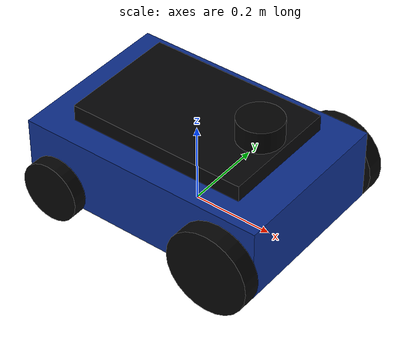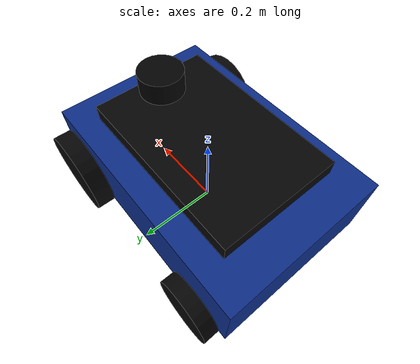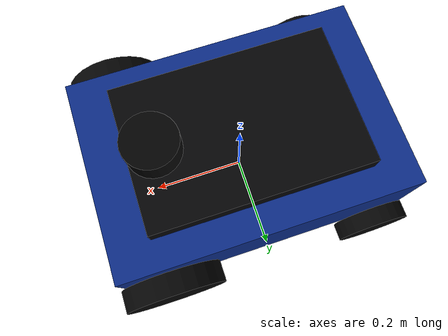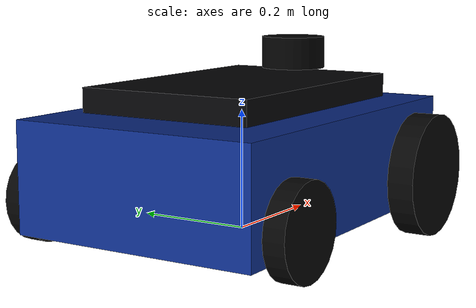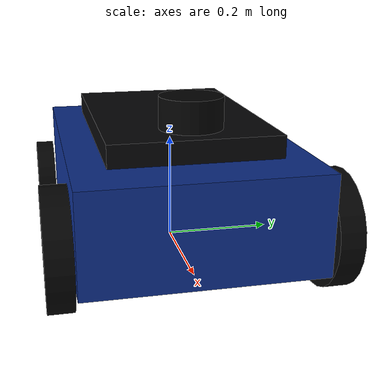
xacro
<?xml version="1.0"?>
<robot xmlns:xacro="http://www.ros.org/wiki/xacro" name="limo_placeholder">
  <xacro:arg name="robot_name" default="limo_1"/>
  <xacro:arg name="robot_namespace" default="/limo_1"/>
  <xacro:arg name="sensor_noise_std" default="0.02"/>

  <link name="base_footprint"/>
  <joint name="base_footprint_joint" type="fixed">
    <parent link="base_footprint"/>
    <child link="base_link"/>
    <origin xyz="0 0 0.115" rpy="0 0 0"/>
  </joint>

  <link name="base_link">
    <inertial>
      <mass value="14.0"/>
      <origin xyz="0 0 0" rpy="0 0 0"/>
      <inertia ixx="0.20" iyy="0.23" izz="0.30" ixy="0" ixz="0" iyz="0"/>
    </inertial>
    <collision name="base_collision">
      <geometry><box size="0.62 0.42 0.18"/></geometry>
    </collision>
    <visual name="base_visual">
      <geometry><box size="0.62 0.42 0.18"/></geometry>
      <material name="limo_blue"><color rgba="0.05 0.18 0.55 1"/></material>
    </visual>
  </link>

  <link name="top_cover">
    <visual>
      <origin xyz="0 0 0" rpy="0 0 0"/>
      <geometry><box size="0.45 0.30 0.04"/></geometry>
      <material name="black"><color rgba="0.02 0.02 0.025 1"/></material>
    </visual>
  </link>
  <joint name="top_cover_joint" type="fixed">
    <parent link="base_link"/>
    <child link="top_cover"/>
    <origin xyz="0 0 0.115" rpy="0 0 0"/>
  </joint>

  <link name="laser_link">
    <visual>
      <geometry><cylinder radius="0.055" length="0.055"/></geometry>
      <material name="laser_black"><color rgba="0.01 0.01 0.01 1"/></material>
    </visual>
  </link>
  <joint name="laser_joint" type="fixed">
    <parent link="base_link"/>
    <child link="laser_link"/>
    <origin xyz="0.17 0 0.17" rpy="0 0 0"/>
  </joint>

  <link name="front_left_wheel">
    <inertial><mass value="0.6"/><origin xyz="0 0 0" rpy="0 0 0"/><inertia ixx="0.002" iyy="0.002" izz="0.002" ixy="0" ixz="0" iyz="0"/></inertial>
    <collision><origin xyz="0 0 0" rpy="1.5708 0 0"/><geometry><cylinder radius="0.105" length="0.045"/></geometry></collision>
    <visual><origin xyz="0 0 0" rpy="1.5708 0 0"/><geometry><cylinder radius="0.105" length="0.045"/></geometry><material name="wheel"><color rgba="0.02 0.02 0.02 1"/></material></visual>
  </link>
  <link name="front_right_wheel">
    <inertial><mass value="0.6"/><origin xyz="0 0 0" rpy="0 0 0"/><inertia ixx="0.002" iyy="0.002" izz="0.002" ixy="0" ixz="0" iyz="0"/></inertial>
    <collision><origin xyz="0 0 0" rpy="1.5708 0 0"/><geometry><cylinder radius="0.105" length="0.045"/></geometry></collision>
    <visual><origin xyz="0 0 0" rpy="1.5708 0 0"/><geometry><cylinder radius="0.105" length="0.045"/></geometry><material name="wheel"/></visual>
  </link>
  <link name="rear_left_wheel">
    <visual><origin xyz="0 0 0" rpy="1.5708 0 0"/><geometry><cylinder radius="0.075" length="0.035"/></geometry><material name="wheel"/></visual>
  </link>
  <link name="rear_right_wheel">
    <visual><origin xyz="0 0 0" rpy="1.5708 0 0"/><geometry><cylinder radius="0.075" length="0.035"/></geometry><material name="wheel"/></visual>
  </link>

  <joint name="front_left_wheel_joint" type="continuous"><parent link="base_link"/><child link="front_left_wheel"/><origin xyz="0.22 0.235 -0.035" rpy="0 0 0"/><axis xyz="0 1 0"/></joint>
  <joint name="front_right_wheel_joint" type="continuous"><parent link="base_link"/><child link="front_right_wheel"/><origin xyz="0.22 -0.235 -0.035" rpy="0 0 0"/><axis xyz="0 1 0"/></joint>
  <joint name="rear_left_wheel_joint" type="fixed"><parent link="base_link"/><child link="rear_left_wheel"/><origin xyz="-0.22 0.235 -0.045" rpy="0 0 0"/></joint>
  <joint name="rear_right_wheel_joint" type="fixed"><parent link="base_link"/><child link="rear_right_wheel"/><origin xyz="-0.22 -0.235 -0.045" rpy="0 0 0"/></joint>

  <gazebo reference="base_link"><material>Gazebo/Blue</material></gazebo>
  <gazebo reference="top_cover"><material>Gazebo/Black</material></gazebo>
  <gazebo reference="front_left_wheel"><material>Gazebo/Black</material></gazebo>
  <gazebo reference="front_right_wheel"><material>Gazebo/Black</material></gazebo>
  <gazebo reference="rear_left_wheel"><material>Gazebo/Black</material></gazebo>
  <gazebo reference="rear_right_wheel"><material>Gazebo/Black</material></gazebo>

  <gazebo>
    <plugin name="diff_drive" filename="libgazebo_ros_diff_drive.so">
      <ros>
        <namespace>$(arg robot_namespace)</namespace>
        <remapping>cmd_vel:=cmd_vel</remapping>
        <remapping>odom:=odom</remapping>
        <remapping>/tf:=tf</remapping>
      </ros>
      <left_joint>front_left_wheel_joint</left_joint>
      <right_joint>front_right_wheel_joint</right_joint>
      <wheel_separation>0.47</wheel_separation>
      <wheel_diameter>0.21</wheel_diameter>
      <max_wheel_torque>20</max_wheel_torque>
      <max_wheel_acceleration>2.0</max_wheel_acceleration>
      <publish_odom>true</publish_odom>
      <publish_odom_tf>true</publish_odom_tf>
      <publish_wheel_tf>false</publish_wheel_tf>
      <odometry_frame>odom</odometry_frame>
      <robot_base_frame>base_footprint</robot_base_frame>
      <update_rate>50</update_rate>
      <covariance_x>$(arg sensor_noise_std)</covariance_x>
      <covariance_y>$(arg sensor_noise_std)</covariance_y>
      <covariance_yaw>$(arg sensor_noise_std)</covariance_yaw>
    </plugin>
  </gazebo>

  <gazebo reference="laser_link">
    <sensor name="limo_lidar" type="ray">
      <pose>0 0 0 0 0 0</pose>
      <always_on>true</always_on>
      <update_rate>10</update_rate>
      <ray>
        <scan><horizontal><samples>360</samples><resolution>1</resolution><min_angle>-3.14159</min_angle><max_angle>3.14159</max_angle></horizontal></scan>
        <range><min>0.08</min><max>12.0</max><resolution>0.02</resolution></range>
        <noise><type>gaussian</type><mean>0.0</mean><stddev>$(arg sensor_noise_std)</stddev></noise>
      </ray>
      <plugin name="gazebo_ros_laser" filename="libgazebo_ros_ray_sensor.so">
        <ros><namespace>$(arg robot_namespace)</namespace><remapping>~/out:=scan</remapping></ros>
        <output_type>sensor_msgs/LaserScan</output_type>
        <frame_name>laser_link</frame_name>
      </plugin>
    </sensor>
  </gazebo>
</robot>
